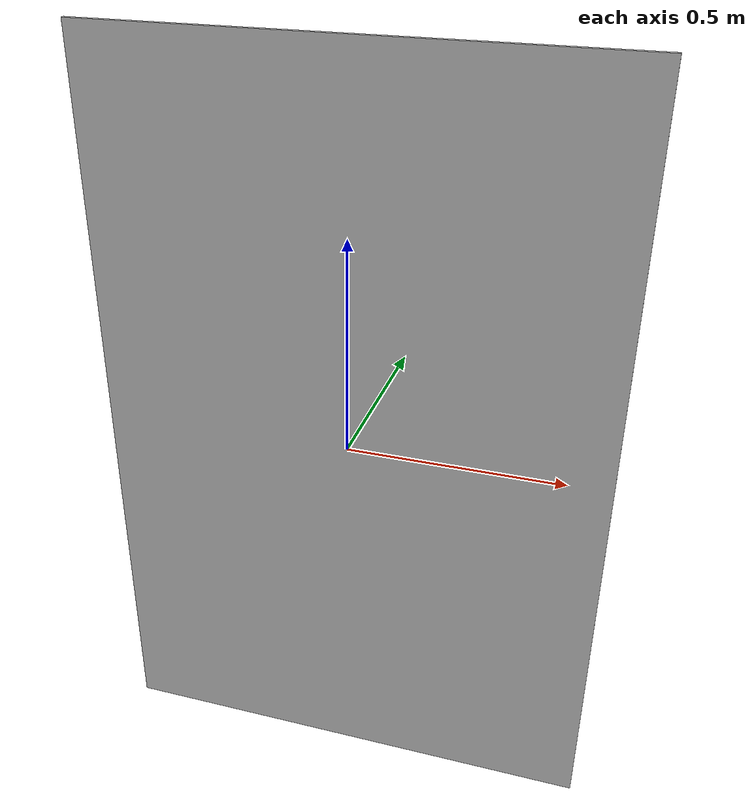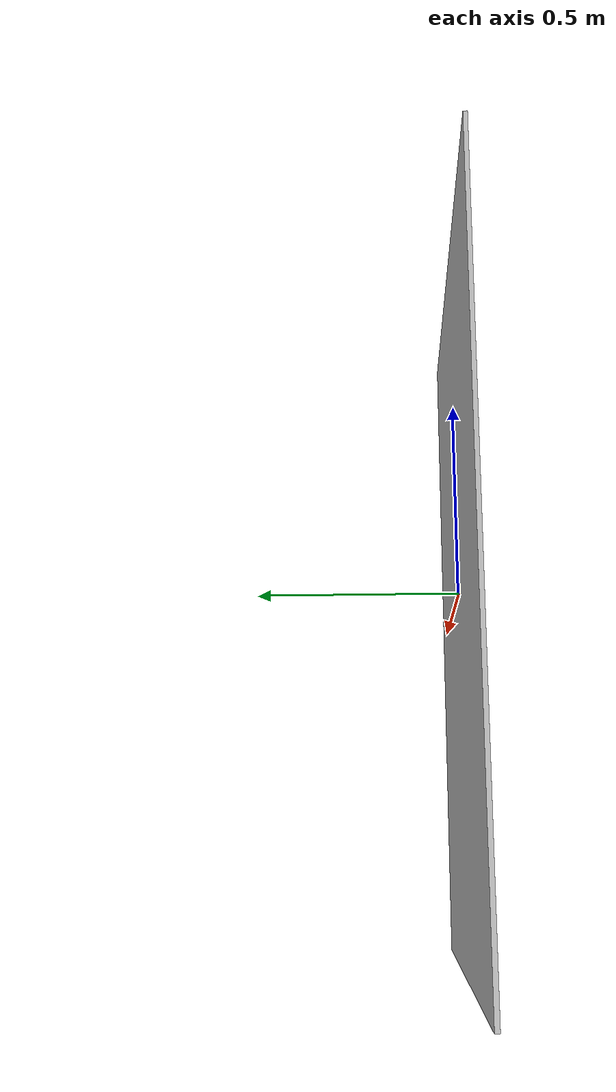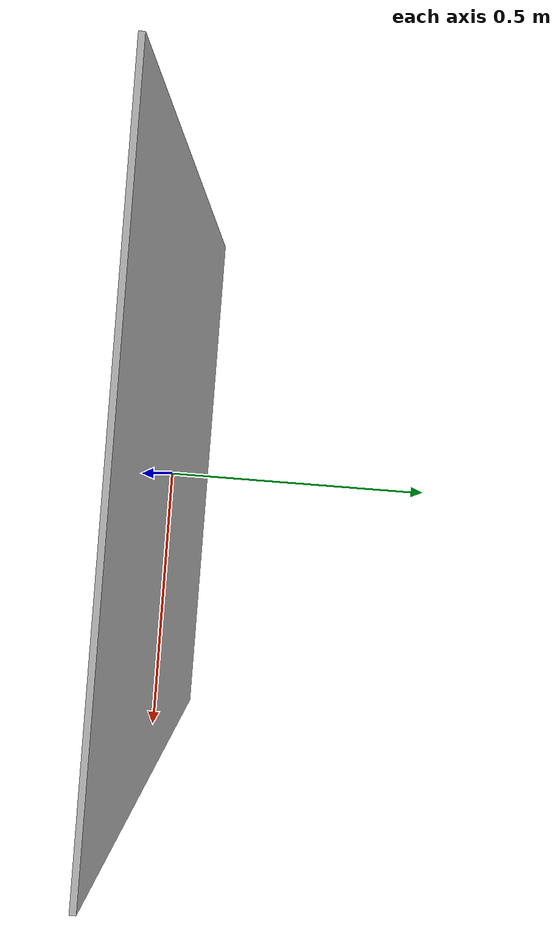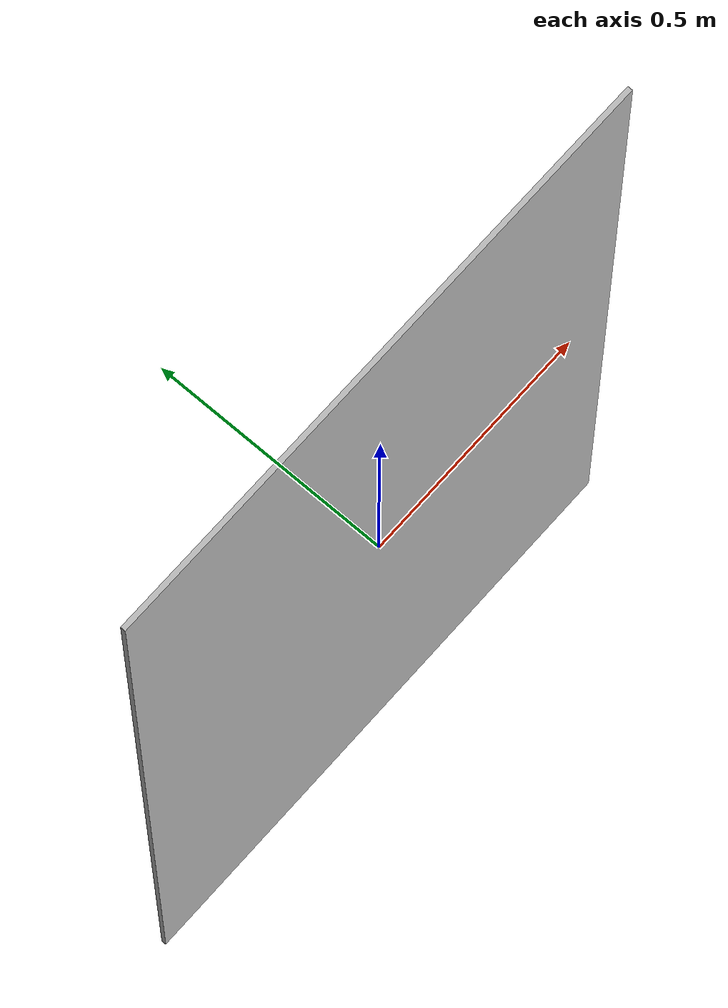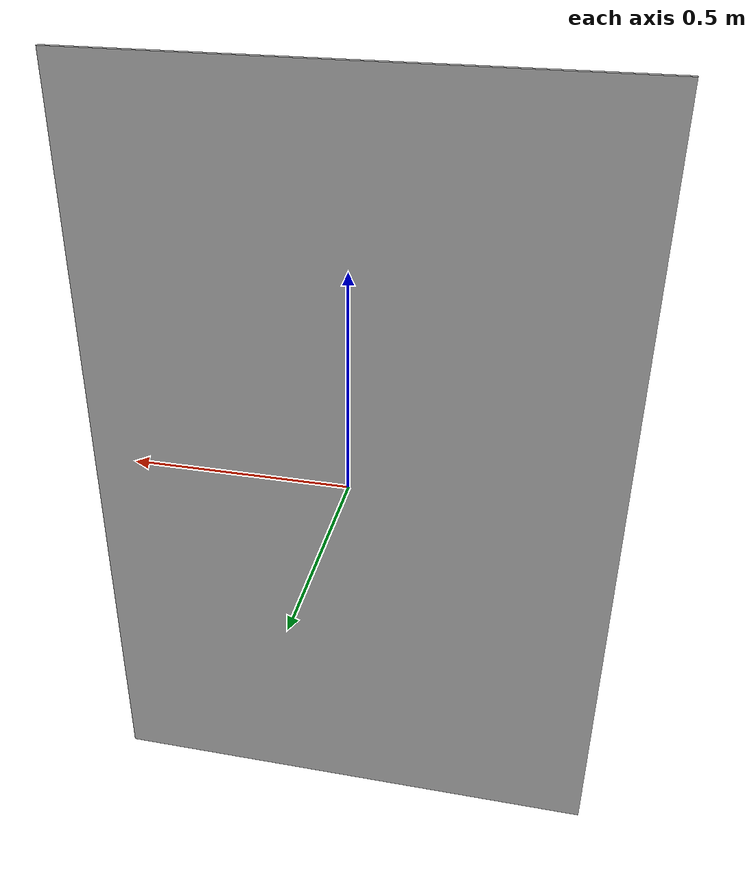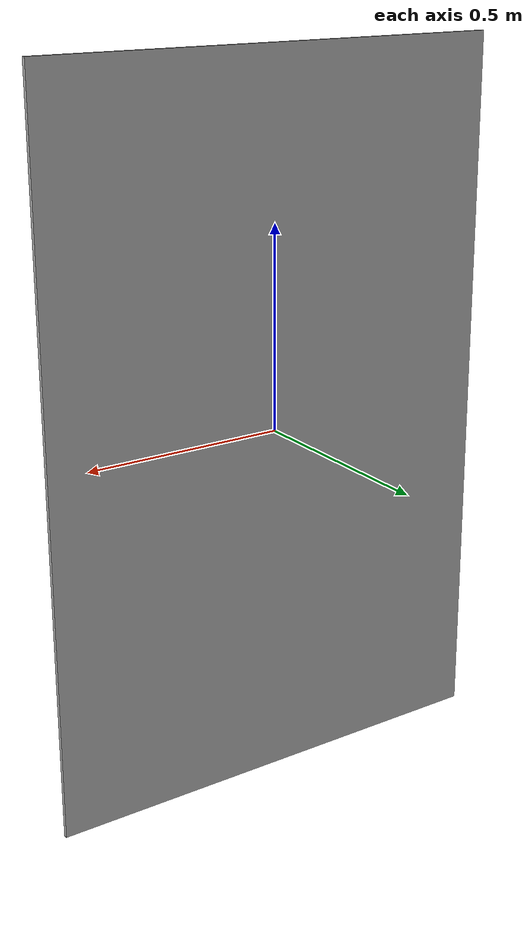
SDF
<?xml version="1.0" ?>
<sdf version="1.7">
  <model name="poster">
    <static>true</static>
    <link name="link">
      <visual name="visual">
        <geometry>
          <box>
            <size>1.2 0.01 1.8</size>
          </box>
        </geometry>
        <material>
          <script>
            <uri>model://poster/materials/scripts/poster.material</uri>
            <uri>model://poster/materials/textures/poster.png</uri>
            <name>RoboticsPoster/Image</name>
          </script>
        </material>
      </visual>
      <collision name="collision">
         <geometry>
          <box>
            <size>1.2 0.01 1.8</size>
          </box>
        </geometry>
      </collision>
    </link>
  </model>
</sdf>
